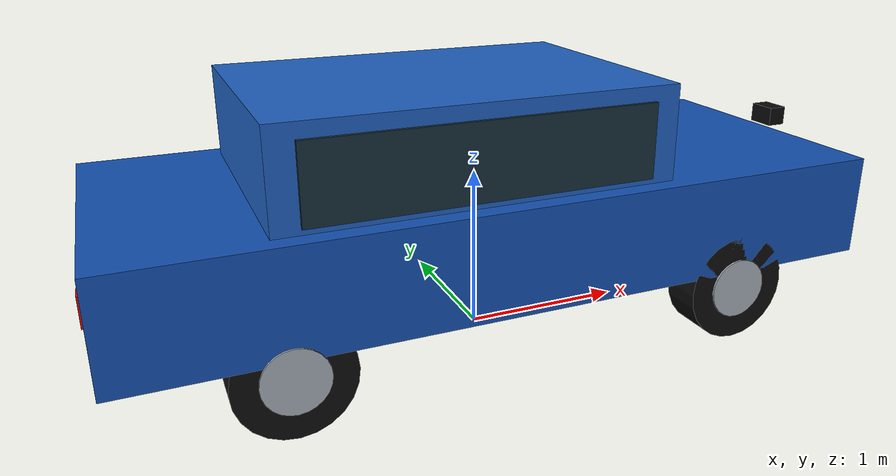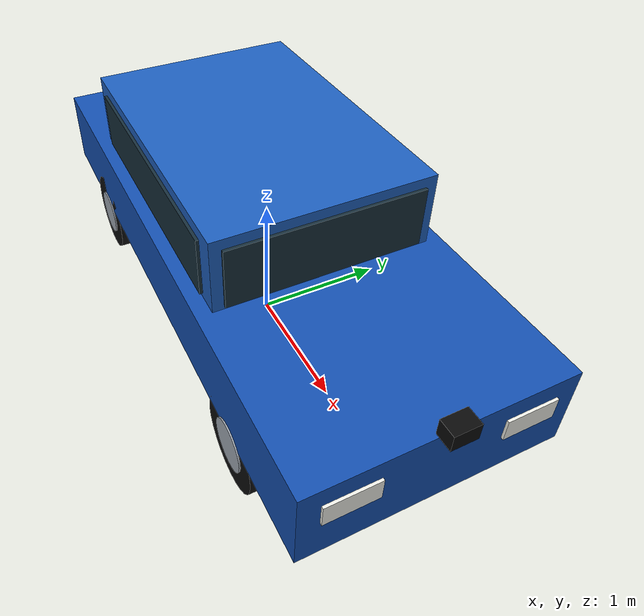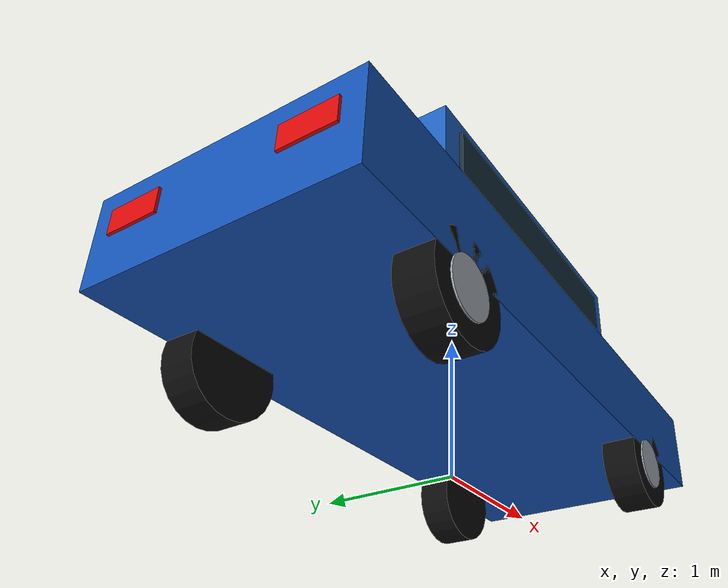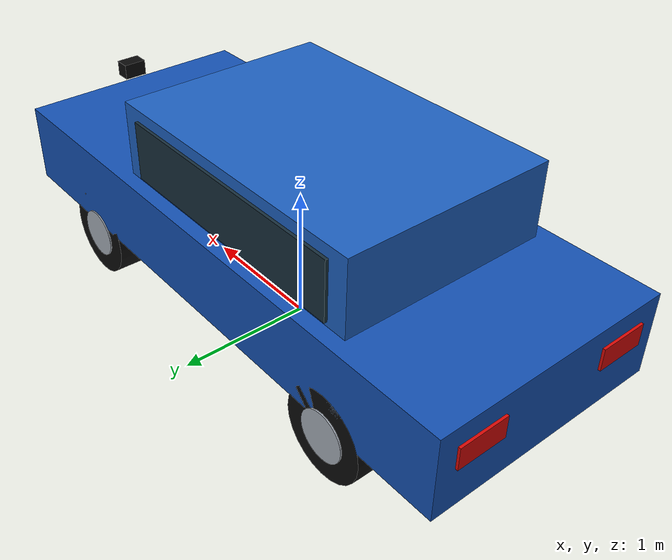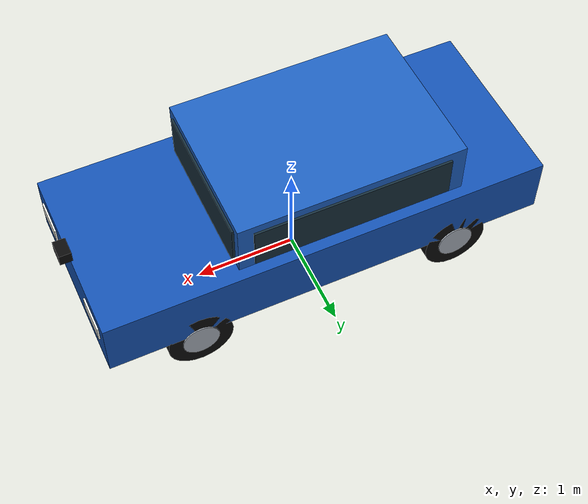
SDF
<?xml version="1.0" ?>
<sdf version="1.8">
  <model name="ute_car">
    <pose>0 0 0.04 0 0 0</pose>
    <self_collide>false</self_collide>
    <link name="chassis">
      <pose>0 0 0.72 0 0 0</pose>
      <inertial>
        <mass>1100</mass>
        <inertia>
          <ixx>390</ixx>
          <iyy>1850</iyy>
          <izz>2000</izz>
          <ixy>0</ixy>
          <ixz>0</ixz>
          <iyz>0</iyz>
        </inertia>
      </inertial>
      <visual name="body">
        <pose>0 0 0 0 0 0</pose>
        <geometry>
          <box>
            <size>4.4 1.8 0.6</size>
          </box>
        </geometry>
        <material>
          <ambient>0.08 0.32 0.70 1</ambient>
          <diffuse>0.08 0.32 0.70 1</diffuse>
          <specular>0.05 0.05 0.05 1</specular>
        </material>
        <cast_shadows>true</cast_shadows>
      </visual>
      <collision name="body_collision">
        <pose>0 0 0 0 0 0</pose>
        <geometry>
          <box>
            <size>4.4 1.8 0.6</size>
          </box>
        </geometry>
      </collision>
      <visual name="cabin">
        <pose>-0.25 0 0.55 0 0 0</pose>
        <geometry>
          <box>
            <size>2.25 1.58 0.6</size>
          </box>
        </geometry>
        <material>
          <ambient>0.12 0.38 0.75 1</ambient>
          <diffuse>0.12 0.38 0.75 1</diffuse>
          <specular>0.05 0.05 0.05 1</specular>
        </material>
        <cast_shadows>true</cast_shadows>
      </visual>
      <collision name="cabin_collision">
        <pose>-0.25 0 0.55 0 0 0</pose>
        <geometry>
          <box>
            <size>2.25 1.58 0.6</size>
          </box>
        </geometry>
      </collision>
      <visual name="windshield">
        <pose>0.885 0 0.55 0 0 0</pose>
        <geometry>
          <box>
            <size>0.025 1.42 0.45</size>
          </box>
        </geometry>
        <material>
          <ambient>0.09 0.18 0.23 1</ambient>
          <diffuse>0.09 0.18 0.23 1</diffuse>
          <specular>0.05 0.05 0.05 1</specular>
        </material>
        <cast_shadows>true</cast_shadows>
      </visual>
      <visual name="window_-1">
        <pose>-0.25 -0.8 0.55 0 0 0</pose>
        <geometry>
          <box>
            <size>1.95 0.025 0.43</size>
          </box>
        </geometry>
        <material>
          <ambient>0.09 0.18 0.23 1</ambient>
          <diffuse>0.09 0.18 0.23 1</diffuse>
          <specular>0.05 0.05 0.05 1</specular>
        </material>
        <cast_shadows>true</cast_shadows>
      </visual>
      <visual name="headlamp_-1">
        <pose>2.205 -0.58 0.08 0 0 0</pose>
        <geometry>
          <box>
            <size>0.025 0.36 0.16</size>
          </box>
        </geometry>
        <material>
          <ambient>0.95 0.95 0.92 1</ambient>
          <diffuse>0.95 0.95 0.92 1</diffuse>
          <specular>0.05 0.05 0.05 1</specular>
        </material>
        <cast_shadows>true</cast_shadows>
      </visual>
      <visual name="taillamp_-1">
        <pose>-2.205 -0.58 0.08 0 0 0</pose>
        <geometry>
          <box>
            <size>0.025 0.36 0.16</size>
          </box>
        </geometry>
        <material>
          <ambient>0.85 0.035 0.025 1</ambient>
          <diffuse>0.85 0.035 0.025 1</diffuse>
          <specular>0.05 0.05 0.05 1</specular>
        </material>
        <cast_shadows>true</cast_shadows>
      </visual>
      <visual name="window_1">
        <pose>-0.25 0.8 0.55 0 0 0</pose>
        <geometry>
          <box>
            <size>1.95 0.025 0.43</size>
          </box>
        </geometry>
        <material>
          <ambient>0.09 0.18 0.23 1</ambient>
          <diffuse>0.09 0.18 0.23 1</diffuse>
          <specular>0.05 0.05 0.05 1</specular>
        </material>
        <cast_shadows>true</cast_shadows>
      </visual>
      <visual name="headlamp_1">
        <pose>2.205 0.58 0.08 0 0 0</pose>
        <geometry>
          <box>
            <size>0.025 0.36 0.16</size>
          </box>
        </geometry>
        <material>
          <ambient>0.95 0.95 0.92 1</ambient>
          <diffuse>0.95 0.95 0.92 1</diffuse>
          <specular>0.05 0.05 0.05 1</specular>
        </material>
        <cast_shadows>true</cast_shadows>
      </visual>
      <visual name="taillamp_1">
        <pose>-2.205 0.58 0.08 0 0 0</pose>
        <geometry>
          <box>
            <size>0.025 0.36 0.16</size>
          </box>
        </geometry>
        <material>
          <ambient>0.85 0.035 0.025 1</ambient>
          <diffuse>0.85 0.035 0.025 1</diffuse>
          <specular>0.05 0.05 0.05 1</specular>
        </material>
        <cast_shadows>true</cast_shadows>
      </visual>
      <visual name="camera_housing">
        <pose>2.24 0 0.38 0 0 0</pose>
        <geometry>
          <box>
            <size>0.12 0.18 0.12</size>
          </box>
        </geometry>
        <material>
          <ambient>0.04 0.04 0.04 1</ambient>
          <diffuse>0.04 0.04 0.04 1</diffuse>
          <specular>0.05 0.05 0.05 1</specular>
        </material>
        <cast_shadows>true</cast_shadows>
      </visual>
      <sensor name="front_camera" type="camera">
        <pose>2.31 0 0.38 0 0.08 0</pose>
        <always_on>true</always_on>
        <update_rate>20</update_rate>
        <topic>/ute_car/front_camera/image</topic>
        <camera>
          <horizontal_fov>1.3962634</horizontal_fov>
          <image>
            <width>640</width>
            <height>360</height>
            <format>R8G8B8</format>
          </image>
          <clip>
            <near>0.05</near>
            <far>180</far>
          </clip>
          <camera_info_topic>/ute_car/front_camera/camera_info</camera_info_topic>
        </camera>
      </sensor>
    </link>
    <link name="front_left_knuckle">
      <pose>1.325 0.78 0.32 0 0 0</pose>
      <inertial>
        <mass>3</mass>
        <inertia>
          <ixx>0.015</ixx>
          <iyy>0.015</iyy>
          <izz>0.015</izz>
          <ixy>0</ixy>
          <ixz>0</ixz>
          <iyz>0</iyz>
        </inertia>
      </inertial>
    </link>
    <joint name="front_left_steer" type="revolute">
      <parent>chassis</parent>
      <child>front_left_knuckle</child>
      <axis>
        <xyz>0 0 1</xyz>
        <limit>
          <lower>-0.7</lower>
          <upper>0.7</upper>
          <effort>1500</effort>
          <velocity>3</velocity>
        </limit>
        <dynamics>
          <damping>0.2</damping>
        </dynamics>
      </axis>
    </joint>
    <link name="front_left_wheel">
      <pose>1.325 0.78 0.32 0 0 0</pose>
      <inertial>
        <mass>18</mass>
        <inertia>
          <ixx>0.5472</ixx>
          <iyy>0.9216</iyy>
          <izz>0.5472</izz>
          <ixy>0</ixy>
          <ixz>0</ixz>
          <iyz>0</iyz>
        </inertia>
      </inertial>
      <visual name="tire">
        <pose>0 0 0 1.5707963 0 0</pose>
        <geometry>
          <cylinder>
            <radius>0.32</radius>
            <length>0.24</length>
          </cylinder>
        </geometry>
        <material>
          <ambient>0.045 0.045 0.045 1</ambient>
          <diffuse>0.045 0.045 0.045 1</diffuse>
          <specular>0.05 0.05 0.05 1</specular>
        </material>
        <cast_shadows>true</cast_shadows>
      </visual>
      <collision name="tire_collision">
        <pose>0 0 0 1.5707963 0 0</pose>
        <geometry>
          <cylinder>
            <radius>0.32</radius>
            <length>0.24</length>
          </cylinder>
        </geometry>
        <surface>
          <friction>
            <ode>
              <mu>1.0</mu>
              <mu2>1.0</mu2>
            </ode>
          </friction>
        </surface>
      </collision>
      <visual name="hub">
        <pose>0 0.125 0 1.5707963 0 0</pose>
        <geometry>
          <cylinder>
            <radius>0.18</radius>
            <length>0.012</length>
          </cylinder>
        </geometry>
        <material>
          <ambient>0.65 0.68 0.72 1</ambient>
          <diffuse>0.65 0.68 0.72 1</diffuse>
          <specular>0.05 0.05 0.05 1</specular>
        </material>
        <cast_shadows>true</cast_shadows>
      </visual>
    </link>
    <joint name="front_left_axle" type="revolute">
      <parent>front_left_knuckle</parent>
      <child>front_left_wheel</child>
      <axis>
        <xyz>0 1 0</xyz>
        <limit>
          <lower>-1e+16</lower>
          <upper>1e+16</upper>
          <effort>1500</effort>
          <velocity>100</velocity>
        </limit>
        <dynamics>
          <damping>0.02</damping>
        </dynamics>
      </axis>
    </joint>
    <link name="front_right_knuckle">
      <pose>1.325 -0.78 0.32 0 0 0</pose>
      <inertial>
        <mass>3</mass>
        <inertia>
          <ixx>0.015</ixx>
          <iyy>0.015</iyy>
          <izz>0.015</izz>
          <ixy>0</ixy>
          <ixz>0</ixz>
          <iyz>0</iyz>
        </inertia>
      </inertial>
    </link>
    <joint name="front_right_steer" type="revolute">
      <parent>chassis</parent>
      <child>front_right_knuckle</child>
      <axis>
        <xyz>0 0 1</xyz>
        <limit>
          <lower>-0.7</lower>
          <upper>0.7</upper>
          <effort>1500</effort>
          <velocity>3</velocity>
        </limit>
        <dynamics>
          <damping>0.2</damping>
        </dynamics>
      </axis>
    </joint>
    <link name="front_right_wheel">
      <pose>1.325 -0.78 0.32 0 0 0</pose>
      <inertial>
        <mass>18</mass>
        <inertia>
          <ixx>0.5472</ixx>
          <iyy>0.9216</iyy>
          <izz>0.5472</izz>
          <ixy>0</ixy>
          <ixz>0</ixz>
          <iyz>0</iyz>
        </inertia>
      </inertial>
      <visual name="tire">
        <pose>0 0 0 1.5707963 0 0</pose>
        <geometry>
          <cylinder>
            <radius>0.32</radius>
            <length>0.24</length>
          </cylinder>
        </geometry>
        <material>
          <ambient>0.045 0.045 0.045 1</ambient>
          <diffuse>0.045 0.045 0.045 1</diffuse>
          <specular>0.05 0.05 0.05 1</specular>
        </material>
        <cast_shadows>true</cast_shadows>
      </visual>
      <collision name="tire_collision">
        <pose>0 0 0 1.5707963 0 0</pose>
        <geometry>
          <cylinder>
            <radius>0.32</radius>
            <length>0.24</length>
          </cylinder>
        </geometry>
        <surface>
          <friction>
            <ode>
              <mu>1.0</mu>
              <mu2>1.0</mu2>
            </ode>
          </friction>
        </surface>
      </collision>
      <visual name="hub">
        <pose>0 -0.125 0 1.5707963 0 0</pose>
        <geometry>
          <cylinder>
            <radius>0.18</radius>
            <length>0.012</length>
          </cylinder>
        </geometry>
        <material>
          <ambient>0.65 0.68 0.72 1</ambient>
          <diffuse>0.65 0.68 0.72 1</diffuse>
          <specular>0.05 0.05 0.05 1</specular>
        </material>
        <cast_shadows>true</cast_shadows>
      </visual>
    </link>
    <joint name="front_right_axle" type="revolute">
      <parent>front_right_knuckle</parent>
      <child>front_right_wheel</child>
      <axis>
        <xyz>0 1 0</xyz>
        <limit>
          <lower>-1e+16</lower>
          <upper>1e+16</upper>
          <effort>1500</effort>
          <velocity>100</velocity>
        </limit>
        <dynamics>
          <damping>0.02</damping>
        </dynamics>
      </axis>
    </joint>
    <link name="rear_left_wheel">
      <pose>-1.325 0.78 0.32 0 0 0</pose>
      <inertial>
        <mass>18</mass>
        <inertia>
          <ixx>0.5472</ixx>
          <iyy>0.9216</iyy>
          <izz>0.5472</izz>
          <ixy>0</ixy>
          <ixz>0</ixz>
          <iyz>0</iyz>
        </inertia>
      </inertial>
      <visual name="tire">
        <pose>0 0 0 1.5707963 0 0</pose>
        <geometry>
          <cylinder>
            <radius>0.32</radius>
            <length>0.24</length>
          </cylinder>
        </geometry>
        <material>
          <ambient>0.045 0.045 0.045 1</ambient>
          <diffuse>0.045 0.045 0.045 1</diffuse>
          <specular>0.05 0.05 0.05 1</specular>
        </material>
        <cast_shadows>true</cast_shadows>
      </visual>
      <collision name="tire_collision">
        <pose>0 0 0 1.5707963 0 0</pose>
        <geometry>
          <cylinder>
            <radius>0.32</radius>
            <length>0.24</length>
          </cylinder>
        </geometry>
        <surface>
          <friction>
            <ode>
              <mu>1.0</mu>
              <mu2>1.0</mu2>
            </ode>
          </friction>
        </surface>
      </collision>
      <visual name="hub">
        <pose>0 0.125 0 1.5707963 0 0</pose>
        <geometry>
          <cylinder>
            <radius>0.18</radius>
            <length>0.012</length>
          </cylinder>
        </geometry>
        <material>
          <ambient>0.65 0.68 0.72 1</ambient>
          <diffuse>0.65 0.68 0.72 1</diffuse>
          <specular>0.05 0.05 0.05 1</specular>
        </material>
        <cast_shadows>true</cast_shadows>
      </visual>
    </link>
    <joint name="rear_left_axle" type="revolute">
      <parent>chassis</parent>
      <child>rear_left_wheel</child>
      <axis>
        <xyz>0 1 0</xyz>
        <limit>
          <lower>-1e+16</lower>
          <upper>1e+16</upper>
          <effort>1500</effort>
          <velocity>100</velocity>
        </limit>
        <dynamics>
          <damping>0.02</damping>
        </dynamics>
      </axis>
    </joint>
    <link name="rear_right_wheel">
      <pose>-1.325 -0.78 0.32 0 0 0</pose>
      <inertial>
        <mass>18</mass>
        <inertia>
          <ixx>0.5472</ixx>
          <iyy>0.9216</iyy>
          <izz>0.5472</izz>
          <ixy>0</ixy>
          <ixz>0</ixz>
          <iyz>0</iyz>
        </inertia>
      </inertial>
      <visual name="tire">
        <pose>0 0 0 1.5707963 0 0</pose>
        <geometry>
          <cylinder>
            <radius>0.32</radius>
            <length>0.24</length>
          </cylinder>
        </geometry>
        <material>
          <ambient>0.045 0.045 0.045 1</ambient>
          <diffuse>0.045 0.045 0.045 1</diffuse>
          <specular>0.05 0.05 0.05 1</specular>
        </material>
        <cast_shadows>true</cast_shadows>
      </visual>
      <collision name="tire_collision">
        <pose>0 0 0 1.5707963 0 0</pose>
        <geometry>
          <cylinder>
            <radius>0.32</radius>
            <length>0.24</length>
          </cylinder>
        </geometry>
        <surface>
          <friction>
            <ode>
              <mu>1.0</mu>
              <mu2>1.0</mu2>
            </ode>
          </friction>
        </surface>
      </collision>
      <visual name="hub">
        <pose>0 -0.125 0 1.5707963 0 0</pose>
        <geometry>
          <cylinder>
            <radius>0.18</radius>
            <length>0.012</length>
          </cylinder>
        </geometry>
        <material>
          <ambient>0.65 0.68 0.72 1</ambient>
          <diffuse>0.65 0.68 0.72 1</diffuse>
          <specular>0.05 0.05 0.05 1</specular>
        </material>
        <cast_shadows>true</cast_shadows>
      </visual>
    </link>
    <joint name="rear_right_axle" type="revolute">
      <parent>chassis</parent>
      <child>rear_right_wheel</child>
      <axis>
        <xyz>0 1 0</xyz>
        <limit>
          <lower>-1e+16</lower>
          <upper>1e+16</upper>
          <effort>1500</effort>
          <velocity>100</velocity>
        </limit>
        <dynamics>
          <damping>0.02</damping>
        </dynamics>
      </axis>
    </joint>
    <plugin filename="gz-sim-ackermann-steering-system" name="gz::sim::systems::AckermannSteering">
      <left_joint>rear_left_axle</left_joint>
      <right_joint>rear_right_axle</right_joint>
      <left_steering_joint>front_left_steer</left_steering_joint>
      <right_steering_joint>front_right_steer</right_steering_joint>
      <wheel_base>2.65</wheel_base>
      <wheel_separation>1.56</wheel_separation>
      <kingpin_width>1.56</kingpin_width>
      <wheel_radius>0.32</wheel_radius>
      <steering_limit>0.5</steering_limit>
      <steer_p_gain>8</steer_p_gain>
      <min_velocity>-3</min_velocity>
      <max_velocity>8</max_velocity>
      <min_acceleration>-3</min_acceleration>
      <max_acceleration>2</max_acceleration>
      <topic>/model/ute_car/cmd_vel</topic>
      <odom_topic>/model/ute_car/odometry</odom_topic>
      <odom_publish_frequency>30</odom_publish_frequency>
    </plugin>
    <plugin filename="gz-sim-joint-state-publisher-system" name="gz::sim::systems::JointStatePublisher">
      <topic>/model/ute_car/joint_state</topic>
    </plugin>
  </model>
</sdf>
